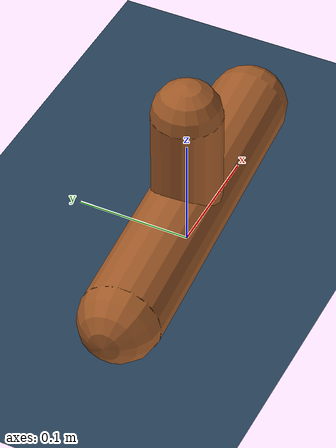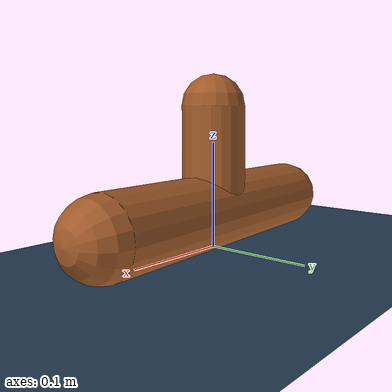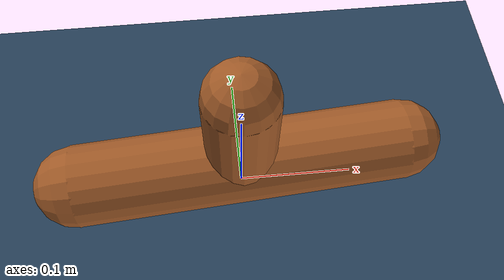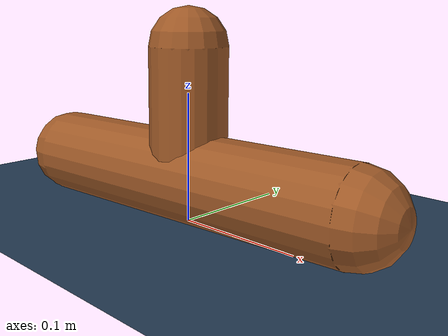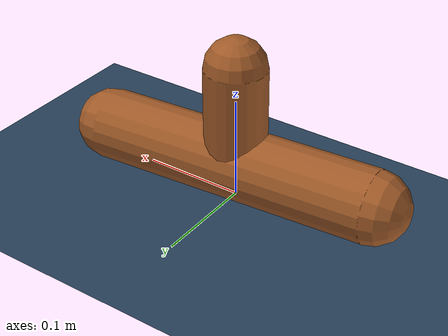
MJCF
<mujoco model="Leg">
  <!-- SET GRAVITY TO POINT DOWN -->
  <option gravity="0 0 -9.81">
    <!-- FLAG TO ADD NOISE TO SENSORS -->
    <flag sensornoise="enable"/>
  </option>

  <!-- VISUAL SETUP STUFF THAT I DON'T FULLY UNDERSTAND YET -->
  <visual>
    <map zfar="30"/>
    <rgba haze="0.15 0.25 0.35 1" />
  </visual>

  <!-- DON'T KNOW WHAT THIS DOES YET -->
  <statistic center="0 0 0.7"/>

  <!-- NOT SURE EXACTLY WHAT THIS STUFF DOES, BUT IT SETS UP THE CAMERA AND FLOOR -->
  <asset>
    <texture type="skybox" builtin="gradient" rgb1=".3 .5 .7" rgb2="0 0 0" width="32" height="512"/>
    <texture name="body" type="cube" builtin="flat" mark="cross" width="128" height="128" rgb1="0.8 0.6 0.4" rgb2="0.8 0.6 0.4" markrgb="1 1 1" random="0.01"/>
    <material name="body" texture="body" texuniform="true" rgba="0.8 0.6 .4 1"/>
    <texture name="grid" type="2d" builtin="checker" width="512" height="512" rgb1=".1 .2 .3" rgb2=".2 .3 .4"/>
    <material name="grid" texture="grid" texrepeat="1 1" texuniform="true" reflectance=".2"/>
  </asset>

  <!-- SECTION TO DEFINE GEOMETRIES AND JOINTS -->
  <default>
    <motor ctrlrange="-1 1" ctrllimited="true"/>
    <default class="body">

      <!-- geoms -->
      <!-- ALL GEOMETRIES ARE CAPSULE TYPE -->
      <geom type="capsule" mass="10" condim="1" friction="0.7 0.005 0.0001" solimp=".9 .99 .003" solref=".015 1" material="body" group="1"/>

      <!-- SHIN GEOMETRY -->
      <default class="shin">
        <geom fromto="0 0 0.1 0 0 0" size = "0.03"/>
      </default>

      <!-- FOOT GEOMETRY -->
      <default class="foot">
        <geom type='capsule' size=".035" friction="0.9 0 0" solimp=".9 .99 .003" solref=".015 1" mass="2"/>
        <!-- LEFT HALF OF FOOT -->
        <default class="foot1">
          <geom fromto="-.07 -0.01 0 .14 0.01 0"/>
        </default>
        <!-- RIGHT HALF OF FOOT -->
        <default class="foot2">
          <geom fromto="-.14 -.01 0 .14 .01 0"/>
        </default>
       </default>

      <!-- joints -->
      <!-- KNEE JOINT; MUST DEFINE AS FREE JOINT SO LEG FLOATS -->
      <default class="knee">
        <joint type="hinge" pos="0 0 .02" range="-160 160"/>
      </default>
      <!-- MAKE ALL ANKLE JOINTS HINGE JOINTS -->
      <joint type="hinge" damping=".2" stiffness="1" armature=".01" limited="true" solimplimit="0 .99 .01"/>
      <default class="ankle">
        <joint range="-50 50"/>

        <!-- Y-AXIS JOINT (+Y AXIS GOES INTO SCREEN) -->
        <default class="ankle_y">
          <joint pos="0 0 .04" axis="0 1 0" stiffness="6"/>
        </default>

        <!-- X-AXIS JOINT (+X AXIS GOES TO THE RIGHT SIDE OF SCREEN) -->
        <default class="ankle_x">
          <joint pos="0 0 .04" stiffness="3"/>
        </default>
      </default>

    </default>
  </default>

    <!-- DEFINE THE LEG, STARTING FROM THE WORLDBODY FRAME? -->
	<worldbody>
      <!-- DEFINE THE FLOOR IN THE ENVIRONMENT -->
      <geom name="ground" size="0 0 .05" type="plane" material="grid" condim="3" friction='0.99 0.99 0.99' solimp=".9 .99 .003" solref=".015 1"/>

      <!-- LIGHT SETTING -->
      <light name="spotlight" mode="targetbodycom" target="foot" diffuse=".8 .8 .8" specular="0.3 0.3 0.3" pos="0 -6 4" cutoff="30"/>

        <!-- BODY FOR SHIN; CAN HAVE MAX 6-DOF -->
        <body name="foot" pos="0 0 0.035">

          <!-- Create prismatic joints to constrain motion along the x and z directions -->
          <joint name="rotation_dof" type="hinge" axis="0 -1 0"/>
          <joint type="slide" name="joint_slide_x" axis="-1 0 0"/>
          <joint type="slide" name="joint_slide_z" axis="0 0 1"/>

          <geom name="foot1_right" class="foot2"/>

          <body name="shin_body">

          <!-- Create a hinge joint to constrain rotation around the y-axis (normal to the x-z plane) -->
            <joint type="hinge" name="ankle_hinge" axis="0 -1 0"/>
            <geom name="shin_geom" class="shin"/>

          </body>

        </body>
      <!-- END OF DEFINING THE LEG IN 3D SPACE -->
	</worldbody>

    <!-- ACTUATORS FOR THE ANKLE JOINTS -->
	<actuator>

      <motor joint="ankle_hinge" name="shin_actuator" gear="40"/>
	</actuator>

    <!-- SENSORS FOR THE ANKLE JOINTS -->
	<sensor>
      <jointpos joint='ankle_hinge'/>
	</sensor>
</mujoco>
